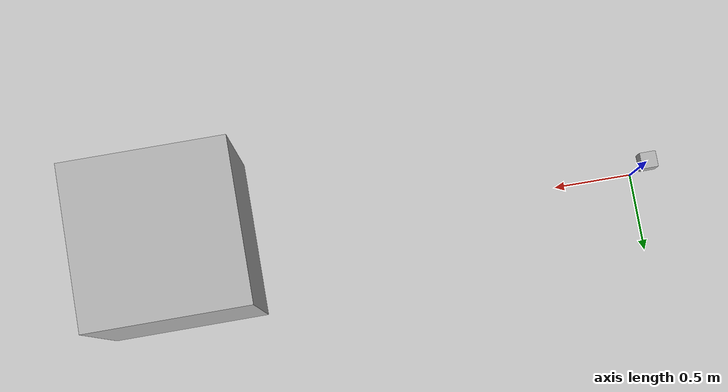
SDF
<?xml version="1.0" ?>
<sdf version="1.6">
  <world name="default">
    <include>
      <uri>model://ground_plane</uri>
    </include>
    <include>
      <uri>model://sun</uri>
    </include>

  <model name="camera_without_intrinsics">
    <static>true</static>
    <pose>0.0 0.0 0.5 0 0 0</pose>
    <link name="link">
      <visual name="visual">
        <geometry>
          <box>
            <size>0.1 0.1 0.1</size>
          </box>
        </geometry>
      </visual>
      <sensor name="camera_without_intrinsics_sensor" type="camera">
        <camera>
          <!-- Use default horizontal FOV-->
            <horizontal_fov>1.0472</horizontal_fov>
            <image>
              <width>320</width>
              <height>240</height>
              <format>RGB_UINT16</format>
            </image>
            <clip>
              <near>0.1</near>
              <far>100</far>
            </clip>
          </camera>
          <always_on>1</always_on>
          <update_rate>10</update_rate>
          <visualize>false</visualize>
        </sensor>
      </link>
    </model>

    <model name="camera_default_intrinsics">
      <static>true</static>
      <pose>0.0 0.0 0.5 0 0 0</pose>
      <link name="link">
        <visual name="visual">
          <geometry>
            <box>
              <size>0.1 0.1 0.1</size>
            </box>
          </geometry>
        </visual>
        <sensor name="camera_default_intrinsics_sensor" type="camera">
          <camera>
            <!-- Use default horizontal FOV-->
            <horizontal_fov>1.0472</horizontal_fov>
            <image>
              <width>320</width>
              <height>240</height>
              <format>RGB_UINT16</format>
            </image>
            <clip>
              <near>0.1</near>
              <far>100</far>
            </clip>
            <lens>
              <intrinsics>
                <fx>277</fx>
                <fy>277</fy>
                <cx>160</cx>
                <cy>120</cy>
                <s>0</s>
              </intrinsics>
            </lens>
          </camera>
          <always_on>1</always_on>
          <update_rate>10</update_rate>
          <visualize>false</visualize>
        </sensor>
      </link>
    </model>

    <model name="camera_custom_intrinsics">
      <static>true</static>
      <pose>0.0 0.0 0.5 0 0 0</pose>
      <link name="link">
        <visual name="visual">
          <geometry>
            <box>
              <size>0.1 0.1 0.1</size>
            </box>
          </geometry>
        </visual>
        <sensor name="camera_custom_intrinsics_sensor" type="camera">
          <camera>
            <!-- Use default horizontal FOV-->
            <horizontal_fov>1.0472</horizontal_fov>
            <image>
              <width>320</width>
              <height>240</height>
              <format>RGB_UINT16</format>
            </image>
            <clip>
              <near>0.1</near>
              <far>100</far>
            </clip>
            <lens>
              <intrinsics>
                <fx>320</fx>
                <fy>320</fy>
                <cx>160</cx>
                <cy>120</cy>
                <s>0</s>
              </intrinsics>
            </lens>
          </camera>
          <always_on>1</always_on>
          <update_rate>10</update_rate>
          <visualize>false</visualize>
        </sensor>
      </link>
    </model>

    <model name="box">
      <pose>3 0 0.5 0 0 0</pose>
      <link name="link">
        <collision name="collision">
          <geometry>
            <box>
              <size>1 1 1</size>
            </box>
          </geometry>
        </collision>
        <visual name="visual">
          <geometry>
            <box>
              <size>1 1 1</size>
            </box>
          </geometry>
        </visual>
      </link>
    </model>

  </world>
</sdf>
